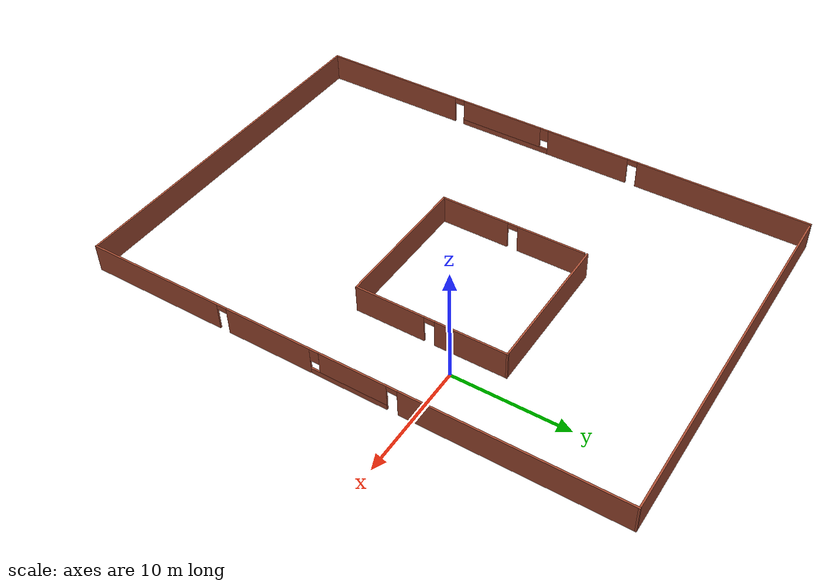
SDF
<?xml version='1.0'?>
<sdf version='1.6'>
  <model name='main_experiment'>
    <pose frame=''>-10.8979 -6.12965 0 0 -0 0</pose>
    <link name='Wall_0'>
      <pose frame=''>-15.925 0 0 0 0 -1.5708</pose>
      <visual name='Wall_0_Visual_0'>
        <pose frame=''>-15.7459 0 1.25 0 -0 0</pose>
        <geometry>
          <box>
            <size>15.2582 0.15 2.5</size>
          </box>
        </geometry>
        <material>
          <script>
            <uri>file://media/materials/scripts/gazebo.material</uri>
            <name>Gazebo/Bricks</name>
          </script>
          <ambient>1 1 1 1</ambient>
        </material>
      </visual>
      <collision name='Wall_0_Collision_0'>
        <geometry>
          <box>
            <size>15.2582 0.15 2.5</size>
          </box>
        </geometry>
        <pose frame=''>-15.7459 0 1.25 0 -0 0</pose>
      </collision>
      <visual name='Wall_0_Visual_1'>
        <pose frame=''>-3.38737 0 1.25 0 -0 0</pose>
        <geometry>
          <box>
            <size>7.65885 0.15 2.5</size>
          </box>
        </geometry>
        <material>
          <script>
            <uri>file://media/materials/scripts/gazebo.material</uri>
            <name>Gazebo/Bricks</name>
          </script>
          <ambient>1 1 1 1</ambient>
        </material>
      </visual>
      <collision name='Wall_0_Collision_1'>
        <geometry>
          <box>
            <size>7.65885 0.15 2.5</size>
          </box>
        </geometry>
        <pose frame=''>-3.38737 0 1.25 0 -0 0</pose>
      </collision>
      <visual name='Wall_0_Visual_2'>
        <pose frame=''>16.6918 0 1.25 0 -0 0</pose>
        <geometry>
          <box>
            <size>13.3663 0.15 2.5</size>
          </box>
        </geometry>
        <material>
          <script>
            <uri>file://media/materials/scripts/gazebo.material</uri>
            <name>Gazebo/Bricks</name>
          </script>
          <ambient>1 1 1 1</ambient>
        </material>
      </visual>
      <collision name='Wall_0_Collision_2'>
        <geometry>
          <box>
            <size>13.3663 0.15 2.5</size>
          </box>
        </geometry>
        <pose frame=''>16.6918 0 1.25 0 -0 0</pose>
      </collision>
      <visual name='Wall_0_Visual_3'>
        <pose frame=''>4.77537 0 0.25 0 -0 0</pose>
        <geometry>
          <box>
            <size>8.66662 0.15 0.5</size>
          </box>
        </geometry>
        <material>
          <script>
            <uri>file://media/materials/scripts/gazebo.material</uri>
            <name>Gazebo/Bricks</name>
          </script>
          <ambient>1 1 1 1</ambient>
        </material>
      </visual>
      <collision name='Wall_0_Collision_3'>
        <geometry>
          <box>
            <size>8.66662 0.15 0.5</size>
          </box>
        </geometry>
        <pose frame=''>4.77537 0 0.25 0 -0 0</pose>
      </collision>
      <visual name='Wall_0_Visual_4'>
        <pose frame=''>5.17537 0 1.5 0 -0 0</pose>
        <geometry>
          <box>
            <size>7.86662 0.15 2</size>
          </box>
        </geometry>
        <material>
          <script>
            <uri>file://media/materials/scripts/gazebo.material</uri>
            <name>Gazebo/Bricks</name>
          </script>
          <ambient>1 1 1 1</ambient>
        </material>
      </visual>
      <collision name='Wall_0_Collision_4'>
        <geometry>
          <box>
            <size>7.86662 0.15 2</size>
          </box>
        </geometry>
        <pose frame=''>5.17537 0 1.5 0 -0 0</pose>
      </collision>
      <visual name='Wall_0_Visual_5'>
        <pose frame=''>0.842054 0 1.9 0 -0 0</pose>
        <geometry>
          <box>
            <size>0.8 0.15 1.2</size>
          </box>
        </geometry>
        <material>
          <script>
            <uri>file://media/materials/scripts/gazebo.material</uri>
            <name>Gazebo/Bricks</name>
          </script>
          <ambient>1 1 1 1</ambient>
        </material>
      </visual>
      <collision name='Wall_0_Collision_5'>
        <geometry>
          <box>
            <size>0.8 0.15 1.2</size>
          </box>
        </geometry>
        <pose frame=''>0.842054 0 1.9 0 -0 0</pose>
      </collision>
      <visual name='Wall_0_Visual_6'>
        <pose frame=''>-7.66679 0 2.25 0 -0 0</pose>
        <geometry>
          <box>
            <size>0.9 0.15 0.5</size>
          </box>
        </geometry>
        <material>
          <script>
            <uri>file://media/materials/scripts/gazebo.material</uri>
            <name>Gazebo/Bricks</name>
          </script>
          <ambient>1 1 1 1</ambient>
        </material>
      </visual>
      <collision name='Wall_0_Collision_6'>
        <geometry>
          <box>
            <size>0.9 0.15 0.5</size>
          </box>
        </geometry>
        <pose frame=''>-7.66679 0 2.25 0 -0 0</pose>
      </collision>
      <visual name='Wall_0_Visual_7'>
        <pose frame=''>9.55868 0 2.25 0 -0 0</pose>
        <geometry>
          <box>
            <size>0.9 0.15 0.5</size>
          </box>
        </geometry>
        <material>
          <script>
            <uri>file://media/materials/scripts/gazebo.material</uri>
            <name>Gazebo/Bricks</name>
          </script>
          <ambient>1 1 1 1</ambient>
        </material>
      </visual>
      <collision name='Wall_0_Collision_7'>
        <geometry>
          <box>
            <size>0.9 0.15 0.5</size>
          </box>
        </geometry>
        <pose frame=''>9.55868 0 2.25 0 -0 0</pose>
      </collision>
    </link>
    <link name='Wall_1'>
      <collision name='Wall_1_Collision'>
        <geometry>
          <box>
            <size>32 0.15 2.5</size>
          </box>
        </geometry>
        <pose frame=''>0 0 1.25 0 -0 0</pose>
      </collision>
      <visual name='Wall_1_Visual'>
        <pose frame=''>0 0 1.25 0 -0 0</pose>
        <geometry>
          <box>
            <size>32 0.15 2.5</size>
          </box>
        </geometry>
        <material>
          <script>
            <uri>file://media/materials/scripts/gazebo.material</uri>
            <name>Gazebo/Bricks</name>
          </script>
          <ambient>1 1 1 1</ambient>
        </material>
      </visual>
      <pose frame=''>0 -23.3 0 0 -0 0</pose>
    </link>
    <link name='Wall_2'>
      <pose frame=''>15.925 0 0 0 -0 1.5708</pose>
      <visual name='Wall_2_Visual_0'>
        <pose frame=''>-17.2299 0 1.25 0 -0 0</pose>
        <geometry>
          <box>
            <size>12.2902 0.15 2.5</size>
          </box>
        </geometry>
        <material>
          <script>
            <uri>file://media/materials/scripts/gazebo.material</uri>
            <name>Gazebo/Bricks</name>
          </script>
          <ambient>1 1 1 1</ambient>
        </material>
      </visual>
      <collision name='Wall_2_Collision_0'>
        <geometry>
          <box>
            <size>12.2902 0.15 2.5</size>
          </box>
        </geometry>
        <pose frame=''>-17.2299 0 1.25 0 -0 0</pose>
      </collision>
      <visual name='Wall_2_Visual_1'>
        <pose frame=''>-6.3591 0 1.25 0 -0 0</pose>
        <geometry>
          <box>
            <size>7.6514 0.15 2.5</size>
          </box>
        </geometry>
        <material>
          <script>
            <uri>file://media/materials/scripts/gazebo.material</uri>
            <name>Gazebo/Bricks</name>
          </script>
          <ambient>1 1 1 1</ambient>
        </material>
      </visual>
      <collision name='Wall_2_Collision_1'>
        <geometry>
          <box>
            <size>7.6514 0.15 2.5</size>
          </box>
        </geometry>
        <pose frame=''>-6.3591 0 1.25 0 -0 0</pose>
      </collision>
      <visual name='Wall_2_Visual_2'>
        <pose frame=''>14.1855 0 1.25 0 -0 0</pose>
        <geometry>
          <box>
            <size>18.379 0.15 2.5</size>
          </box>
        </geometry>
        <material>
          <script>
            <uri>file://media/materials/scripts/gazebo.material</uri>
            <name>Gazebo/Bricks</name>
          </script>
          <ambient>1 1 1 1</ambient>
        </material>
      </visual>
      <collision name='Wall_2_Collision_2'>
        <geometry>
          <box>
            <size>18.379 0.15 2.5</size>
          </box>
        </geometry>
        <pose frame=''>14.1855 0 1.25 0 -0 0</pose>
      </collision>
      <visual name='Wall_2_Visual_3'>
        <pose frame=''>0.781311 0 0.25 0 -0 0</pose>
        <geometry>
          <box>
            <size>6.62943 0.15 0.5</size>
          </box>
        </geometry>
        <material>
          <script>
            <uri>file://media/materials/scripts/gazebo.material</uri>
            <name>Gazebo/Bricks</name>
          </script>
          <ambient>1 1 1 1</ambient>
        </material>
      </visual>
      <collision name='Wall_2_Collision_3'>
        <geometry>
          <box>
            <size>6.62943 0.15 0.5</size>
          </box>
        </geometry>
        <pose frame=''>0.781311 0 0.25 0 -0 0</pose>
      </collision>
      <visual name='Wall_2_Visual_4'>
        <pose frame=''>1.18131 0 1.5 0 -0 0</pose>
        <geometry>
          <box>
            <size>5.82943 0.15 2</size>
          </box>
        </geometry>
        <material>
          <script>
            <uri>file://media/materials/scripts/gazebo.material</uri>
            <name>Gazebo/Bricks</name>
          </script>
          <ambient>1 1 1 1</ambient>
        </material>
      </visual>
      <collision name='Wall_2_Collision_4'>
        <geometry>
          <box>
            <size>5.82943 0.15 2</size>
          </box>
        </geometry>
        <pose frame=''>1.18131 0 1.5 0 -0 0</pose>
      </collision>
      <visual name='Wall_2_Visual_5'>
        <pose frame=''>-2.13341 0 1.9 0 -0 0</pose>
        <geometry>
          <box>
            <size>0.8 0.15 1.2</size>
          </box>
        </geometry>
        <material>
          <script>
            <uri>file://media/materials/scripts/gazebo.material</uri>
            <name>Gazebo/Bricks</name>
          </script>
          <ambient>1 1 1 1</ambient>
        </material>
      </visual>
      <collision name='Wall_2_Collision_5'>
        <geometry>
          <box>
            <size>0.8 0.15 1.2</size>
          </box>
        </geometry>
        <pose frame=''>-2.13341 0 1.9 0 -0 0</pose>
      </collision>
      <visual name='Wall_2_Visual_6'>
        <pose frame=''>-10.6348 0 2.25 0 -0 0</pose>
        <geometry>
          <box>
            <size>0.9 0.15 0.5</size>
          </box>
        </geometry>
        <material>
          <script>
            <uri>file://media/materials/scripts/gazebo.material</uri>
            <name>Gazebo/Bricks</name>
          </script>
          <ambient>1 1 1 1</ambient>
        </material>
      </visual>
      <collision name='Wall_2_Collision_6'>
        <geometry>
          <box>
            <size>0.9 0.15 0.5</size>
          </box>
        </geometry>
        <pose frame=''>-10.6348 0 2.25 0 -0 0</pose>
      </collision>
      <visual name='Wall_2_Visual_7'>
        <pose frame=''>4.54603 0 2.25 0 -0 0</pose>
        <geometry>
          <box>
            <size>0.9 0.15 0.5</size>
          </box>
        </geometry>
        <material>
          <script>
            <uri>file://media/materials/scripts/gazebo.material</uri>
            <name>Gazebo/Bricks</name>
          </script>
          <ambient>1 1 1 1</ambient>
        </material>
      </visual>
      <collision name='Wall_2_Collision_7'>
        <geometry>
          <box>
            <size>0.9 0.15 0.5</size>
          </box>
        </geometry>
        <pose frame=''>4.54603 0 2.25 0 -0 0</pose>
      </collision>
    </link>
    <link name='Wall_3'>
      <collision name='Wall_3_Collision'>
        <geometry>
          <box>
            <size>31.75 0.15 2.5</size>
          </box>
        </geometry>
        <pose frame=''>0 0 1.25 0 -0 0</pose>
      </collision>
      <visual name='Wall_3_Visual'>
        <pose frame=''>0 0 1.25 0 -0 0</pose>
        <geometry>
          <box>
            <size>31.75 0.15 2.5</size>
          </box>
        </geometry>
        <material>
          <script>
            <uri>file://media/materials/scripts/gazebo.material</uri>
            <name>Gazebo/Bricks</name>
          </script>
          <ambient>1 1 1 1</ambient>
        </material>
      </visual>
      <pose frame=''>0.125 23.3 0 0 -0 3.14159</pose>
    </link>
    <link name='Wall_5'>
      <pose frame=''>-3.38688 3.06376 0 0 0 -1.5708</pose>
      <visual name='Wall_5_Visual_0'>
        <pose frame=''>-3.51293 0 1.25 0 -0 0</pose>
        <geometry>
          <box>
            <size>5.97415 0.15 2.5</size>
          </box>
        </geometry>
        <material>
          <script>
            <uri>file://media/materials/scripts/gazebo.material</uri>
            <name>Gazebo/Bricks</name>
          </script>
          <ambient>1 1 1 1</ambient>
        </material>
      </visual>
      <collision name='Wall_5_Collision_0'>
        <geometry>
          <box>
            <size>5.97415 0.15 2.5</size>
          </box>
        </geometry>
        <pose frame=''>-3.51293 0 1.25 0 -0 0</pose>
      </collision>
      <visual name='Wall_5_Visual_1'>
        <pose frame=''>3.43707 0 1.25 0 -0 0</pose>
        <geometry>
          <box>
            <size>6.12585 0.15 2.5</size>
          </box>
        </geometry>
        <material>
          <script>
            <uri>file://media/materials/scripts/gazebo.material</uri>
            <name>Gazebo/Bricks</name>
          </script>
          <ambient>1 1 1 1</ambient>
        </material>
      </visual>
      <collision name='Wall_5_Collision_1'>
        <geometry>
          <box>
            <size>6.12585 0.15 2.5</size>
          </box>
        </geometry>
        <pose frame=''>3.43707 0 1.25 0 -0 0</pose>
      </collision>
      <visual name='Wall_5_Visual_2'>
        <pose frame=''>-0.075854 0 2.25 0 -0 0</pose>
        <geometry>
          <box>
            <size>0.9 0.15 0.5</size>
          </box>
        </geometry>
        <material>
          <script>
            <uri>file://media/materials/scripts/gazebo.material</uri>
            <name>Gazebo/Bricks</name>
          </script>
          <ambient>1 1 1 1</ambient>
        </material>
      </visual>
      <collision name='Wall_5_Collision_2'>
        <geometry>
          <box>
            <size>0.9 0.15 0.5</size>
          </box>
        </geometry>
        <pose frame=''>-0.075854 0 2.25 0 -0 0</pose>
      </collision>
    </link>
    <link name='Wall_6'>
      <collision name='Wall_6_Collision'>
        <geometry>
          <box>
            <size>12.5 0.15 2.5</size>
          </box>
        </geometry>
        <pose frame=''>0 0 1.25 0 -0 0</pose>
      </collision>
      <visual name='Wall_6_Visual'>
        <pose frame=''>0 0 1.25 0 -0 0</pose>
        <geometry>
          <box>
            <size>12.5 0.15 2.5</size>
          </box>
        </geometry>
        <material>
          <script>
            <uri>file://media/materials/scripts/gazebo.material</uri>
            <name>Gazebo/Bricks</name>
          </script>
          <ambient>1 1 1 1</ambient>
        </material>
      </visual>
      <pose frame=''>2.78812 -3.36124 0 0 -0 0</pose>
    </link>
    <link name='Wall_7'>
      <pose frame=''>8.96312 3.18876 0 0 -0 1.5708</pose>
      <visual name='Wall_7_Visual_0'>
        <pose frame=''>-3.56207 0 1.25 0 -0 0</pose>
        <geometry>
          <box>
            <size>6.12585 0.15 2.5</size>
          </box>
        </geometry>
        <material>
          <script>
            <uri>file://media/materials/scripts/gazebo.material</uri>
            <name>Gazebo/Bricks</name>
          </script>
          <ambient>1 1 1 1</ambient>
        </material>
      </visual>
      <collision name='Wall_7_Collision_0'>
        <geometry>
          <box>
            <size>6.12585 0.15 2.5</size>
          </box>
        </geometry>
        <pose frame=''>-3.56207 0 1.25 0 -0 0</pose>
      </collision>
      <visual name='Wall_7_Visual_1'>
        <pose frame=''>3.51293 0 1.25 0 -0 0</pose>
        <geometry>
          <box>
            <size>6.22415 0.15 2.5</size>
          </box>
        </geometry>
        <material>
          <script>
            <uri>file://media/materials/scripts/gazebo.material</uri>
            <name>Gazebo/Bricks</name>
          </script>
          <ambient>1 1 1 1</ambient>
        </material>
      </visual>
      <collision name='Wall_7_Collision_1'>
        <geometry>
          <box>
            <size>6.22415 0.15 2.5</size>
          </box>
        </geometry>
        <pose frame=''>3.51293 0 1.25 0 -0 0</pose>
      </collision>
      <visual name='Wall_7_Visual_2'>
        <pose frame=''>-0.049146 0 2.25 0 -0 0</pose>
        <geometry>
          <box>
            <size>0.9 0.15 0.5</size>
          </box>
        </geometry>
        <material>
          <script>
            <uri>file://media/materials/scripts/gazebo.material</uri>
            <name>Gazebo/Bricks</name>
          </script>
          <ambient>1 1 1 1</ambient>
        </material>
      </visual>
      <collision name='Wall_7_Collision_2'>
        <geometry>
          <box>
            <size>0.9 0.15 0.5</size>
          </box>
        </geometry>
        <pose frame=''>-0.049146 0 2.25 0 -0 0</pose>
      </collision>
    </link>
    <link name='Wall_8'>
      <collision name='Wall_8_Collision'>
        <geometry>
          <box>
            <size>12.5 0.15 2.5</size>
          </box>
        </geometry>
        <pose frame=''>0 0 1.25 0 -0 0</pose>
      </collision>
      <visual name='Wall_8_Visual'>
        <pose frame=''>0 0 1.25 0 -0 0</pose>
        <geometry>
          <box>
            <size>12.5 0.15 2.5</size>
          </box>
        </geometry>
        <material>
          <script>
            <uri>file://media/materials/scripts/gazebo.material</uri>
            <name>Gazebo/Bricks</name>
          </script>
          <ambient>1 1 1 1</ambient>
        </material>
      </visual>
      <pose frame=''>2.78812 9.73876 0 0 -0 3.14159</pose>
    </link>
    <static>1</static>
  </model>
</sdf>
